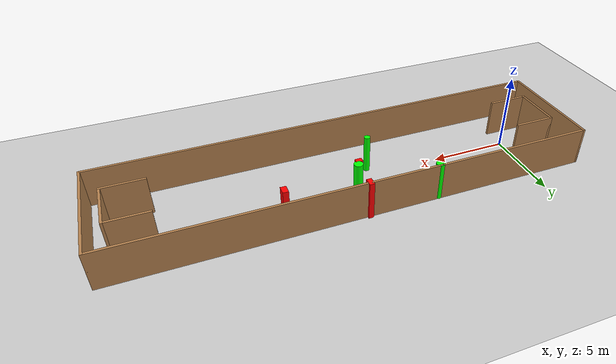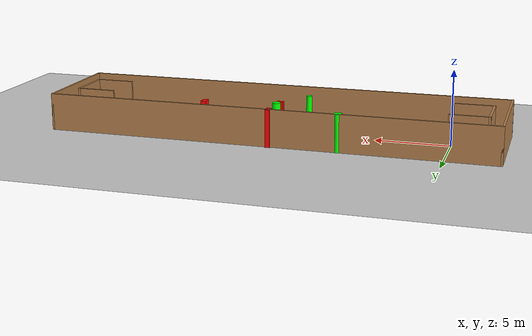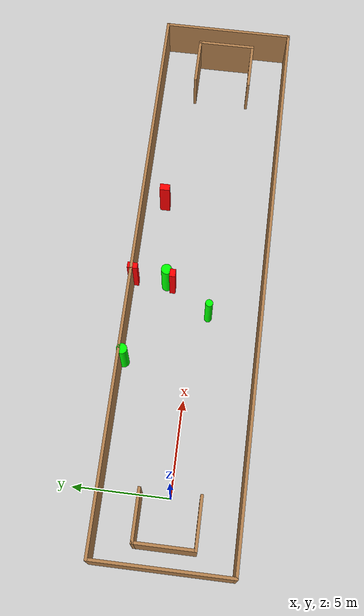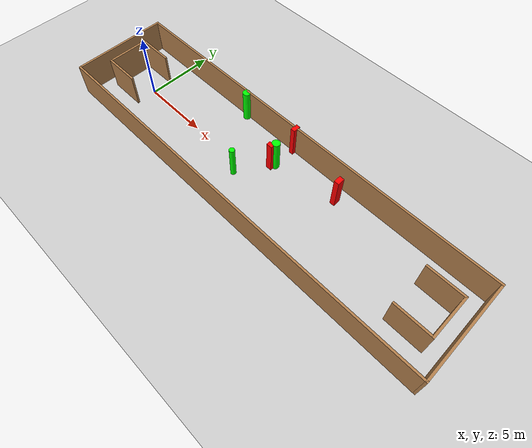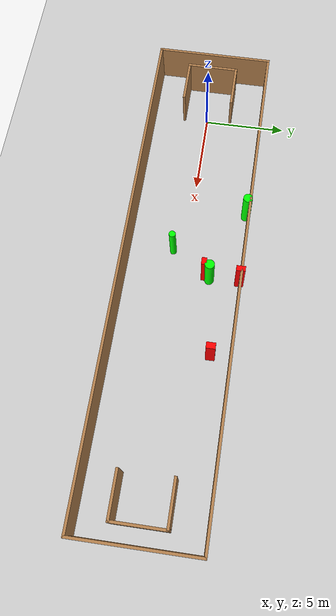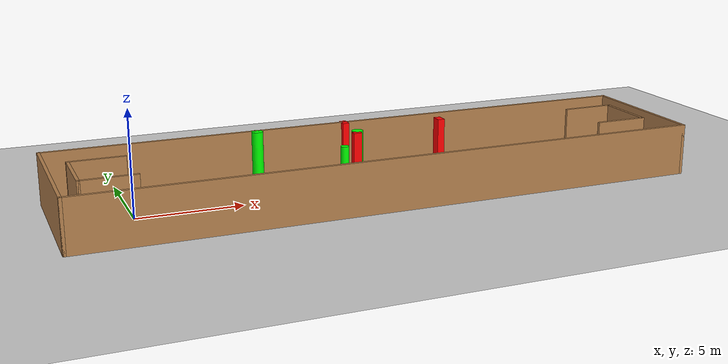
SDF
<sdf version="1.7">
 <world name="default">
  <light name="sun" type="directional">
   <pose>0 0 10 0 -0 0</pose>
   <diffuse>0.8 0.8 0.8 1</diffuse>
   <specular>0.2 0.2 0.2 1</specular>
   <attenuation>
    <range>1000</range>
    <constant>0.9</constant>
    <linear>0.01</linear>
    <quadratic>0.001</quadratic>
   </attenuation>
   <direction>-0.5 0.1 -0.9</direction>
   <spot><inner_angle>0</inner_angle><outer_angle>0</outer_angle><falloff>0</falloff></spot>
  </light>
  <model name="ground_plane">
   <static>1</static>
   <link name="link">
    <collision name="collision">
     <geometry><plane><normal>0 0 1</normal><size>100 100</size></plane></geometry>
     <surface>
      <contact><collide_bitmask>65535</collide_bitmask></contact>
      <friction><ode><mu>100</mu><mu2>50</mu2></ode></friction>
     </surface>
    </collision>
    <visual name="visual">
     <cast_shadows>0</cast_shadows>
     <geometry><plane><normal>0 0 1</normal><size>100 100</size></plane></geometry>
     <material>
      <script><uri>file://media/materials/scripts/gazebo.material</uri><name>Gazebo/Grey</name></script>
     </material>
    </visual>
   </link>
  </model>
  <gravity>0 0 -9.8</gravity>
  <magnetic_field>6e-06 2.3e-05 -4.2e-05</magnetic_field>
  <atmosphere type="adiabatic"/>
  <physics type="ode">
   <max_step_size>0.001</max_step_size>
   <real_time_factor>1</real_time_factor>
   <real_time_update_rate>1000</real_time_update_rate>
  </physics>
  <scene><ambient>0.4 0.4 0.4 1</ambient><background>0.7 0.7 0.7 1</background><shadows>1</shadows></scene>
  <spherical_coordinates>
   <surface_model>EARTH_WGS84</surface_model>
   <latitude_deg>0</latitude_deg>
   <longitude_deg>0</longitude_deg>
   <elevation>0</elevation>
   <heading_deg>0</heading_deg>
  </spherical_coordinates>
  <model name="my_base_walls">
   <link name="Wall_0">
    <collision name="Wall_0_Collision">
     <geometry><box><size>7.15 0.15 2.5</size></box></geometry>
     <pose>0 0 1.25 0 -0 0</pose>
    </collision>
    <visual name="Wall_0_Visual">
     <pose>0 0 1.25 0 -0 0</pose>
     <geometry><box><size>7.15 0.15 2.5</size></box></geometry>
     <material>
      <script><uri>file://media/materials/scripts/gazebo.material</uri><name>Gazebo/Wood</name></script>
      <ambient>1 1 1 1</ambient>
     </material>
     <meta><layer>0</layer></meta>
    </visual>
    <pose>-15 0 0 0 -0 1.5708</pose>
   </link>
   <link name="Wall_10">
    <collision name="Wall_10_Collision">
     <geometry><box><size>2.65 0.15 2.5</size></box></geometry>
     <pose>0 0 1.25 0 -0 0</pose>
    </collision>
    <visual name="Wall_10_Visual">
     <pose>0 0 1.25 0 -0 0</pose>
     <geometry><box><size>2.65 0.15 2.5</size></box></geometry>
     <material>
      <script><uri>file://media/materials/scripts/gazebo.material</uri><name>Gazebo/Wood</name></script>
      <ambient>1 1 1 1</ambient>
     </material>
     <meta><layer>0</layer></meta>
    </visual>
    <pose>-12.75 -1.5 0 0 -0 0</pose>
   </link>
   <link name="Wall_12">
    <collision name="Wall_12_Collision">
     <geometry><box><size>2.65 0.15 2.5</size></box></geometry>
     <pose>0 0 1.25 0 -0 0</pose>
    </collision>
    <visual name="Wall_12_Visual">
     <pose>0 0 1.25 0 -0 0</pose>
     <geometry><box><size>2.65 0.15 2.5</size></box></geometry>
     <material>
      <script><uri>file://media/materials/scripts/gazebo.material</uri><name>Gazebo/Wood</name></script>
      <ambient>1 1 1 1</ambient>
     </material>
     <meta><layer>0</layer></meta>
    </visual>
    <pose>-12.75 1.5 0 0 -0 0</pose>
   </link>
   <link name="Wall_14">
    <collision name="Wall_14_Collision">
     <geometry><box><size>3.15 0.15 2.5</size></box></geometry>
     <pose>0 0 1.25 0 -0 0</pose>
    </collision>
    <visual name="Wall_14_Visual">
     <pose>0 0 1.25 0 -0 0</pose>
     <geometry><box><size>3.15 0.15 2.5</size></box></geometry>
     <material>
      <script><uri>file://media/materials/scripts/gazebo.material</uri><name>Gazebo/Wood</name></script>
      <ambient>1 1 1 1</ambient>
     </material>
     <meta><layer>0</layer></meta>
    </visual>
    <pose>14 0 0 0 -0 -1.5708</pose>
   </link>
   <link name="Wall_15">
    <collision name="Wall_15_Collision">
     <geometry><box><size>2.65 0.15 2.5</size></box></geometry>
     <pose>0 0 1.25 0 -0 0</pose>
    </collision>
    <visual name="Wall_15_Visual">
     <pose>0 0 1.25 0 -0 0</pose>
     <geometry><box><size>2.65 0.15 2.5</size></box></geometry>
     <material>
      <script><uri>file://media/materials/scripts/gazebo.material</uri><name>Gazebo/Wood</name></script>
      <ambient>1 1 1 1</ambient>
     </material>
     <meta><layer>0</layer></meta>
    </visual>
    <pose>12.75 -1.5 0 0 -0 3.14159</pose>
   </link>
   <link name="Wall_17">
    <collision name="Wall_17_Collision">
     <geometry><box><size>2.65 0.15 2.5</size></box></geometry>
     <pose>0 0 1.25 0 -0 0</pose>
    </collision>
    <visual name="Wall_17_Visual">
     <pose>0 0 1.25 0 -0 0</pose>
     <geometry><box><size>2.65 0.15 2.5</size></box></geometry>
     <material>
      <script><uri>file://media/materials/scripts/gazebo.material</uri><name>Gazebo/Wood</name></script>
      <ambient>1 1 1 1</ambient>
     </material>
     <meta><layer>0</layer></meta>
    </visual>
    <pose>12.75 1.5 0 0 -0 3.14159</pose>
   </link>
   <link name="Wall_2">
    <collision name="Wall_2_Collision">
     <geometry><box><size>30.15 0.15 2.5</size></box></geometry>
     <pose>0 0 1.25 0 -0 0</pose>
    </collision>
    <visual name="Wall_2_Visual">
     <pose>0 0 1.25 0 -0 0</pose>
     <geometry><box><size>30.15 0.15 2.5</size></box></geometry>
     <material>
      <script><uri>file://media/materials/scripts/gazebo.material</uri><name>Gazebo/Wood</name></script>
      <ambient>1 1 1 1</ambient>
     </material>
     <meta><layer>0</layer></meta>
    </visual>
    <pose>-0 -3.5 0 0 -0 0</pose>
   </link>
   <link name="Wall_4">
    <collision name="Wall_4_Collision">
     <geometry><box><size>30.15 0.15 2.5</size></box></geometry>
     <pose>0 0 1.25 0 -0 0</pose>
    </collision>
    <visual name="Wall_4_Visual">
     <pose>0 0 1.25 0 -0 0</pose>
     <geometry><box><size>30.15 0.15 2.5</size></box></geometry>
     <material>
      <script><uri>file://media/materials/scripts/gazebo.material</uri><name>Gazebo/Wood</name></script>
      <ambient>1 1 1 1</ambient>
     </material>
     <meta><layer>0</layer></meta>
    </visual>
    <pose>-0 3.5 0 0 -0 0</pose>
   </link>
   <link name="Wall_6">
    <collision name="Wall_6_Collision">
     <geometry><box><size>7.15 0.15 2.5</size></box></geometry>
     <pose>0 0 1.25 0 -0 0</pose>
    </collision>
    <visual name="Wall_6_Visual">
     <pose>0 0 1.25 0 -0 0</pose>
     <geometry><box><size>7.15 0.15 2.5</size></box></geometry>
     <material>
      <script><uri>file://media/materials/scripts/gazebo.material</uri><name>Gazebo/Wood</name></script>
      <ambient>1 1 1 1</ambient>
     </material>
     <meta><layer>0</layer></meta>
    </visual>
    <pose>15 0 0 0 -0 -1.5708</pose>
   </link>
   <link name="Wall_9">
    <collision name="Wall_9_Collision">
     <geometry><box><size>3.15 0.15 2.5</size></box></geometry>
     <pose>0 0 1.25 0 -0 0</pose>
    </collision>
    <visual name="Wall_9_Visual">
     <pose>0 0 1.25 0 -0 0</pose>
     <geometry><box><size>3.15 0.15 2.5</size></box></geometry>
     <material>
      <script><uri>file://media/materials/scripts/gazebo.material</uri><name>Gazebo/Wood</name></script>
      <ambient>1 1 1 1</ambient>
     </material>
     <meta><layer>0</layer></meta>
    </visual>
    <pose>-14 0 0 0 -0 -1.5708</pose>
   </link>
   <static>1</static>
   <pose>11.5 0 0 0 -0 0</pose>
  </model>
  <model name="cylinder1">
   <static>1</static>
   <link name="link">
    <inertial>
     <mass>1</mass>
     <inertia><ixx>0.5</ixx><ixy>0</ixy><ixz>0</ixz><iyy>0.5</iyy><iyz>0</iyz><izz>1</izz></inertia>
    </inertial>
    <collision name="collision">
     <geometry><cylinder><radius>0.28201927587846387</radius><length>2.5</length></cylinder></geometry>
    </collision>
    <visual name="visual">
     <geometry><cylinder><radius>0.28201927587846387</radius><length>2.5</length></cylinder></geometry>
     <material>
      <ambient>0 1 0 1</ambient>
      <diffuse>0 1 0 1</diffuse>
      <specular>0.1 0.1 0.1 1</specular>
      <emissive>0 0 0 0</emissive>
     </material>
    </visual>
   </link>
   <pose>11.242809231762772 1.6429800122213614 1.25 0 0 0</pose>
  </model>
  <model name="cylinder2">
   <static>1</static>
   <link name="link">
    <inertial>
     <mass>1</mass>
     <inertia><ixx>0.5</ixx><ixy>0</ixy><ixz>0</ixz><iyy>0.5</iyy><iyz>0</iyz><izz>1</izz></inertia>
    </inertial>
    <collision name="collision">
     <geometry><cylinder><radius>0.2767427355366763</radius><length>2.5</length></cylinder></geometry>
    </collision>
    <visual name="visual">
     <geometry><cylinder><radius>0.2767427355366763</radius><length>2.5</length></cylinder></geometry>
     <material>
      <ambient>0 1 0 1</ambient>
      <diffuse>0 1 0 1</diffuse>
      <specular>0.1 0.1 0.1 1</specular>
      <emissive>0 0 0 0</emissive>
     </material>
    </visual>
   </link>
   <pose>6.712467857463841 3.3324345710201104 1.25 0 0 0</pose>
  </model>
  <model name="cylinder3">
   <static>1</static>
   <link name="link">
    <inertial>
     <mass>1</mass>
     <inertia><ixx>0.5</ixx><ixy>0</ixy><ixz>0</ixz><iyy>0.5</iyy><iyz>0</iyz><izz>1</izz></inertia>
    </inertial>
    <collision name="collision">
     <geometry><cylinder><radius>0.19726842990682317</radius><length>2.5</length></cylinder></geometry>
    </collision>
    <visual name="visual">
     <geometry><cylinder><radius>0.19726842990682317</radius><length>2.5</length></cylinder></geometry>
     <material>
      <ambient>0 1 0 1</ambient>
      <diffuse>0 1 0 1</diffuse>
      <specular>0.1 0.1 0.1 1</specular>
      <emissive>0 0 0 0</emissive>
     </material>
    </visual>
   </link>
   <pose>9.65642275767852 -0.7645260957051083 1.25 0 0 0</pose>
  </model>
  <model name="box1">
   <static>1</static>
   <link name="link">
    <inertial>
     <mass>1</mass>
     <inertia><ixx>0.083</ixx><ixy>0</ixy><ixz>0</ixz><iyy>0.083</iyy><iyz>0</iyz><izz>0.083</izz></inertia>
    </inertial>
    <collision name="collision">
     <geometry><box><size>0.4249400644859091 0.3027380405339943 2.5</size></box></geometry>
    </collision>
    <visual name="visual">
     <geometry><box><size>0.4249400644859091 0.3027380405339943 2.5</size></box></geometry>
     <material>
      <ambient>1 0 0 1</ambient>
      <diffuse>1 0 0 1</diffuse>
      <specular>0.1 0.1 0.1 1</specular>
      <emissive>0 0 0 0</emissive>
     </material>
    </visual>
    <sensor name="my_contact" type="contact">
     <contact><collision>box_collision</collision><topic>__default_topic__</topic></contact>
    </sensor>
   </link>
   <pose>11.082484784442785 1.3023585526395118 1.25 0 0 0</pose>
  </model>
  <model name="box2">
   <static>1</static>
   <link name="link">
    <inertial>
     <mass>1</mass>
     <inertia><ixx>0.083</ixx><ixy>0</ixy><ixz>0</ixz><iyy>0.083</iyy><iyz>0</iyz><izz>0.083</izz></inertia>
    </inertial>
    <collision name="collision">
     <geometry><box><size>0.3565135579005485 0.533482575130483 2.5</size></box></geometry>
    </collision>
    <visual name="visual">
     <geometry><box><size>0.3565135579005485 0.533482575130483 2.5</size></box></geometry>
     <material>
      <ambient>1 0 0 1</ambient>
      <diffuse>1 0 0 1</diffuse>
      <specular>0.1 0.1 0.1 1</specular>
      <emissive>0 0 0 0</emissive>
     </material>
    </visual>
    <sensor name="my_contact" type="contact">
     <contact><collision>box_collision</collision><topic>__default_topic__</topic></contact>
    </sensor>
   </link>
   <pose>15.96193314690292 2.3403692651202546 1.25 0 0 0</pose>
  </model>
  <model name="box3">
   <static>1</static>
   <link name="link">
    <inertial>
     <mass>1</mass>
     <inertia><ixx>0.083</ixx><ixy>0</ixy><ixz>0</ixz><iyy>0.083</iyy><iyz>0</iyz><izz>0.083</izz></inertia>
    </inertial>
    <collision name="collision">
     <geometry><box><size>0.3147802324449601 0.5329299766114713 2.5</size></box></geometry>
    </collision>
    <visual name="visual">
     <geometry><box><size>0.3147802324449601 0.5329299766114713 2.5</size></box></geometry>
     <material>
      <ambient>1 0 0 1</ambient>
      <diffuse>1 0 0 1</diffuse>
      <specular>0.1 0.1 0.1 1</specular>
      <emissive>0 0 0 0</emissive>
     </material>
    </visual>
    <sensor name="my_contact" type="contact">
     <contact><collision>box_collision</collision><topic>__default_topic__</topic></contact>
    </sensor>
   </link>
   <pose>11.251094131051971 3.4369190694055884 1.25 0 0 0</pose>
  </model>
 </world>
</sdf>
